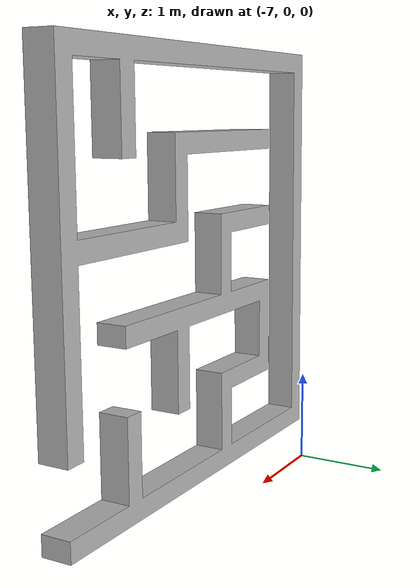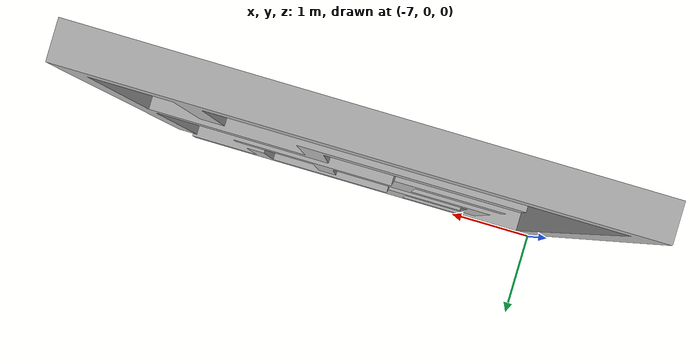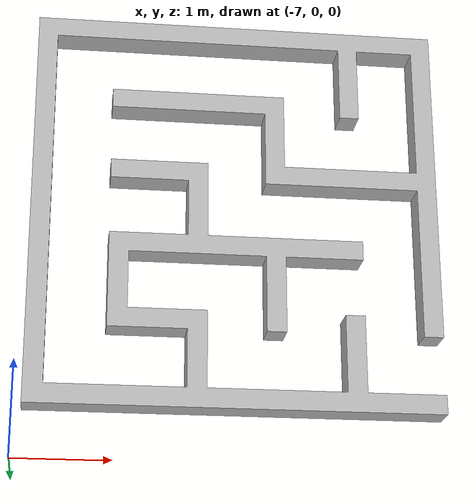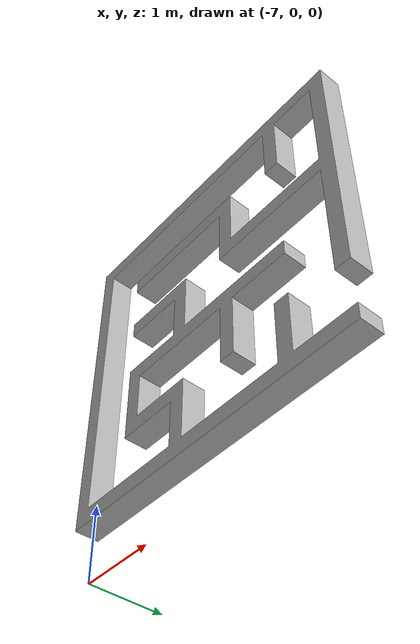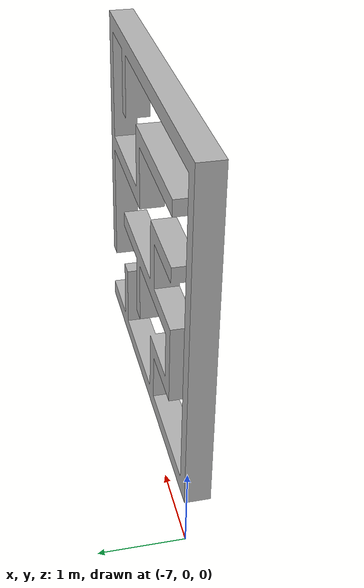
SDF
<?xml version="1.0" ?>
<sdf version="1.6">
  <model name="maze8">
    <pose>0 0 0 1.5708 0 0</pose>
    <static>true</static>
    <link name="link">
      <collision name="collision">
        <geometry>
          <mesh>
            <scale>0.001 0.001 0.001</scale>
            <uri>model://maze8/meshes/maze8.stl</uri>
          </mesh>
        </geometry>
      </collision>
      <visual name="visual">
        <geometry>

          <mesh>
            <scale>0.001 0.001 0.001</scale>
            <uri>model://maze8/meshes/maze8.stl</uri>
          </mesh>
        </geometry>
      </visual>
    </link>
  </model>
</sdf>
